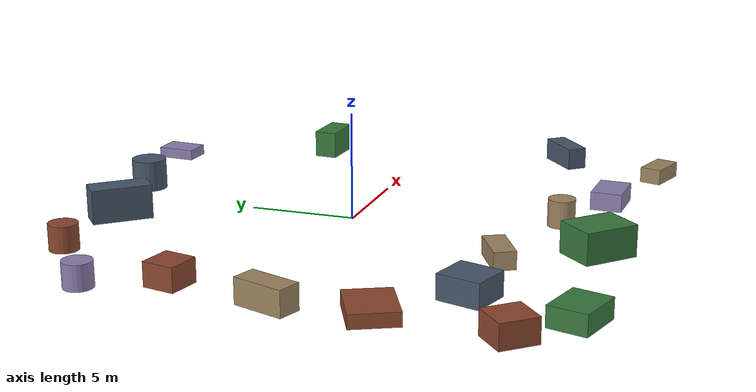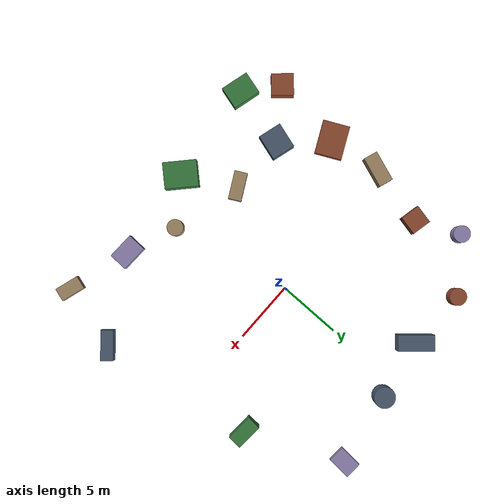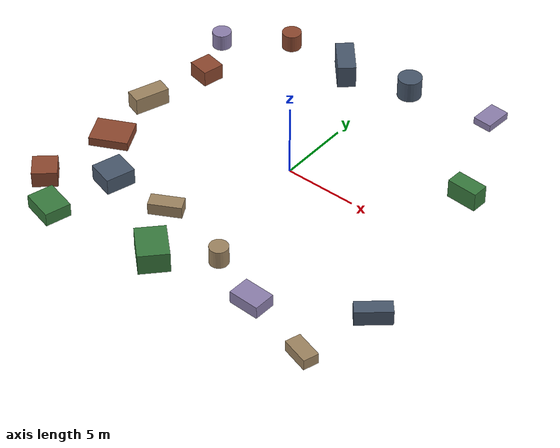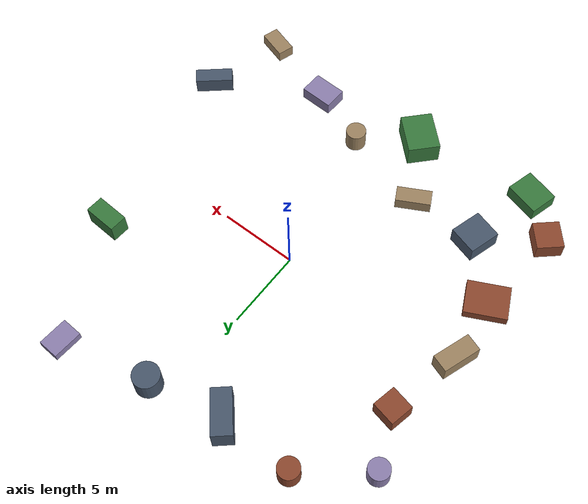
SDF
<sdf version="1.10">
 <world name="robotx_task1_uav_view">
  <gravity>0 0 -9.81</gravity>
  <physics name="physics" type="ode">
   <max_step_size>0.002</max_step_size>
   <real_time_factor>1.0</real_time_factor>
  </physics>
  <scene>
   <ambient>0.22 0.20 0.18 1.0</ambient>
   <background>0.74 0.55 0.44 1.0</background>
   <shadows>true</shadows>
   <grid>false</grid>
  </scene>
  <light name="sun" type="directional">
   <pose>0 0 300 0 0 0</pose>
   <diffuse>0.95 0.74 0.56 1.0</diffuse>
   <specular>1.00 0.87 0.71 1.0</specular>
   <direction>-0.40 0.20 -0.88</direction>
   <attenuation>
    <range>2500</range>
    <constant>0.85</constant>
    <linear>0.001</linear>
    <quadratic>0.00005</quadratic>
   </attenuation>
  </light>
  <plugin filename="gz-sim-physics-system" name="gz::sim::systems::Physics"/>
  <plugin filename="gz-sim-user-commands-system" name="gz::sim::systems::UserCommands"/>
  <plugin filename="gz-sim-scene-broadcaster-system" name="gz::sim::systems::SceneBroadcaster"/>
  <plugin filename="gz-sim-sensors-system" name="gz::sim::systems::Sensors">
   <render_engine>ogre2</render_engine>
  </plugin>
  <model name="scene_clutter_box_000">
   <static>true</static>
   <pose>-11.499 -0.684 0.607 0 0 1.239750</pose>
   <link name="link">
    <visual name="v">
     <geometry><box><size>2.434 1.114 1.174</size></box></geometry>
     <material><ambient>0.45 0.38 0.32 1.0</ambient><diffuse>0.62 0.52 0.38 1.0</diffuse></material>
    </visual>
   </link>
  </model>
  <model name="scene_clutter_box_001">
   <static>true</static>
   <pose>-3.424 10.197 0.822 0 0 -0.849978</pose>
   <link name="link">
    <visual name="v">
     <geometry><box><size>2.790 1.248 1.604</size></box></geometry>
     <material><ambient>0.18 0.22 0.28 1.0</ambient><diffuse>0.28 0.34 0.42 1.0</diffuse></material>
    </visual>
   </link>
  </model>
  <model name="scene_clutter_box_002">
   <static>true</static>
   <pose>-10.952 -4.809 0.334 0 0 2.027599</pose>
   <link name="link">
    <visual name="v">
     <geometry><box><size>2.119 2.626 0.627</size></box></geometry>
     <material><ambient>0.35 0.16 0.12 1.0</ambient><diffuse>0.55 0.28 0.18 1.0</diffuse></material>
    </visual>
   </link>
  </model>
  <model name="scene_clutter_box_003">
   <static>true</static>
   <pose>-1.238 -11.723 0.750 0 0 -2.321640</pose>
   <link name="link">
    <visual name="v">
     <geometry><box><size>2.020 2.593 1.459</size></box></geometry>
     <material><ambient>0.12 0.30 0.14 1.0</ambient><diffuse>0.22 0.48 0.24 1.0</diffuse></material>
    </visual>
   </link>
  </model>
  <model name="scene_clutter_cyl_004">
   <static>true</static>
   <pose>-11.991 7.380 0.630 0 0 -0.556312</pose>
   <link name="link">
    <visual name="v">
     <geometry><cylinder><radius>0.660</radius><length>1.160</length></cylinder></geometry>
     <material><ambient>0.40 0.35 0.50 1.0</ambient><diffuse>0.55 0.50 0.68 1.0</diffuse></material>
    </visual>
   </link>
  </model>
  <model name="scene_clutter_box_005">
   <static>true</static>
   <pose>-3.483 -7.918 0.435 0 0 -1.080448</pose>
   <link name="link">
    <visual name="v">
     <geometry><box><size>1.010 2.207 0.830</size></box></geometry>
     <material><ambient>0.45 0.38 0.32 1.0</ambient><diffuse>0.62 0.52 0.38 1.0</diffuse></material>
    </visual>
   </link>
  </model>
  <model name="scene_clutter_cyl_006">
   <static>true</static>
   <pose>1.262 11.139 0.786 0 0 0.999886</pose>
   <link name="link">
    <visual name="v">
     <geometry><cylinder><radius>0.829</radius><length>1.472</length></cylinder></geometry>
     <material><ambient>0.18 0.22 0.28 1.0</ambient><diffuse>0.28 0.34 0.42 1.0</diffuse></material>
    </visual>
   </link>
  </model>
  <model name="scene_clutter_cyl_007">
   <static>true</static>
   <pose>-8.186 10.314 0.657 0 0 -1.343388</pose>
   <link name="link">
    <visual name="v">
     <geometry><cylinder><radius>0.671</radius><length>1.215</length></cylinder></geometry>
     <material><ambient>0.35 0.16 0.12 1.0</ambient><diffuse>0.55 0.28 0.18 1.0</diffuse></material>
    </visual>
   </link>
  </model>
  <model name="scene_clutter_box_008">
   <static>true</static>
   <pose>-9.110 -12.577 0.486 0 0 1.305096</pose>
   <link name="link">
    <visual name="v">
     <geometry><box><size>1.784 2.219 0.933</size></box></geometry>
     <material><ambient>0.12 0.30 0.14 1.0</ambient><diffuse>0.22 0.48 0.24 1.0</diffuse></material>
    </visual>
   </link>
  </model>
  <model name="scene_clutter_box_009">
   <static>true</static>
   <pose>7.054 12.301 0.276 0 0 3.083263</pose>
   <link name="link">
    <visual name="v">
     <geometry><box><size>1.330 1.877 0.512</size></box></geometry>
     <material><ambient>0.40 0.35 0.50 1.0</ambient><diffuse>0.55 0.50 0.68 1.0</diffuse></material>
    </visual>
   </link>
  </model>
  <model name="scene_clutter_cyl_010">
   <static>true</static>
   <pose>2.081 -9.373 0.689 0 0 -1.205877</pose>
   <link name="link">
    <visual name="v">
     <geometry><cylinder><radius>0.634</radius><length>1.278</length></cylinder></geometry>
     <material><ambient>0.45 0.38 0.32 1.0</ambient><diffuse>0.62 0.52 0.38 1.0</diffuse></material>
    </visual>
   </link>
  </model>
  <model name="scene_clutter_box_011">
   <static>true</static>
   <pose>12.298 -7.362 0.548 0 0 0.714670</pose>
   <link name="link">
    <visual name="v">
     <geometry><box><size>2.377 0.963 1.057</size></box></geometry>
     <material><ambient>0.18 0.22 0.28 1.0</ambient><diffuse>0.28 0.34 0.42 1.0</diffuse></material>
    </visual>
   </link>
  </model>
  <model name="scene_clutter_box_012">
   <static>true</static>
   <pose>-10.485 4.037 0.574 0 0 -1.776358</pose>
   <link name="link">
    <visual name="v">
     <geometry><box><size>1.510 1.540 1.108</size></box></geometry>
     <material><ambient>0.35 0.16 0.12 1.0</ambient><diffuse>0.55 0.28 0.18 1.0</diffuse></material>
    </visual>
   </link>
  </model>
  <model name="scene_clutter_box_013">
   <static>true</static>
   <pose>10.326 4.896 0.684 0 0 1.515181</pose>
   <link name="link">
    <visual name="v">
     <geometry><box><size>1.122 2.124 1.328</size></box></geometry>
     <material><ambient>0.12 0.30 0.14 1.0</ambient><diffuse>0.22 0.48 0.24 1.0</diffuse></material>
    </visual>
   </link>
  </model>
  <model name="scene_clutter_box_014">
   <static>true</static>
   <pose>5.929 -10.916 0.452 0 0 1.535816</pose>
   <link name="link">
    <visual name="v">
     <geometry><box><size>1.479 2.115 0.863</size></box></geometry>
     <material><ambient>0.40 0.35 0.50 1.0</ambient><diffuse>0.55 0.50 0.68 1.0</diffuse></material>
    </visual>
   </link>
  </model>
  <model name="scene_clutter_box_015">
   <static>true</static>
   <pose>10.956 -12.404 0.395 0 0 1.272394</pose>
   <link name="link">
    <visual name="v">
     <geometry><box><size>1.047 1.919 0.750</size></box></geometry>
     <material><ambient>0.45 0.38 0.32 1.0</ambient><diffuse>0.62 0.52 0.38 1.0</diffuse></material>
    </visual>
   </link>
  </model>
  <model name="scene_clutter_box_016">
   <static>true</static>
   <pose>-7.970 -7.910 0.585 0 0 -1.854252</pose>
   <link name="link">
    <visual name="v">
     <geometry><box><size>2.022 1.852 1.129</size></box></geometry>
     <material><ambient>0.18 0.22 0.28 1.0</ambient><diffuse>0.28 0.34 0.42 1.0</diffuse></material>
    </visual>
   </link>
  </model>
  <model name="scene_clutter_box_017">
   <static>true</static>
   <pose>-11.535 -10.453 0.577 0 0 2.299523</pose>
   <link name="link">
    <visual name="v">
     <geometry><box><size>1.740 1.657 1.114</size></box></geometry>
     <material><ambient>0.35 0.16 0.12 1.0</ambient><diffuse>0.55 0.28 0.18 1.0</diffuse></material>
    </visual>
   </link>
  </model>
  <model name="uav_dataset_camera">
   <static>false</static>
   <pose>0 0 26 0 0 0</pose>
   <plugin filename="librobotx_overhead_motion_plugin.dylib" name="robotx::OverheadMotionPlugin">
    <radius_x_m>8.22710</radius_x_m>
    <radius_y_m>6.64291</radius_y_m>
    <angular_speed_rad_s>0.081687</angular_speed_rad_s>
    <phase_rad>3.606081</phase_rad>
    <z_wobble_m>0.06412</z_wobble_m>
    <z_wobble_hz>0.07311</z_wobble_hz>
    <z_wobble_phase_rad>4.319885</z_wobble_phase_rad>
   </plugin>
   <link name="camera_link">
    <gravity>false</gravity>
    <sensor name="top_down_rgb" type="camera">
     <always_on>true</always_on>
     <update_rate>20</update_rate>
     <pose>0 0 0 0 1.57079632679 0</pose>
     <camera>
      <horizontal_fov>1.05</horizontal_fov>
      <image><width>1920</width><height>1080</height><format>R8G8B8</format></image>
      <clip><near>0.2</near><far>600</far></clip>
     </camera>
     <topic>/robotx/uav/camera/image_raw</topic>
     <visualize>true</visualize>
    </sensor>
   </link>
  </model>
 </world>
</sdf>
